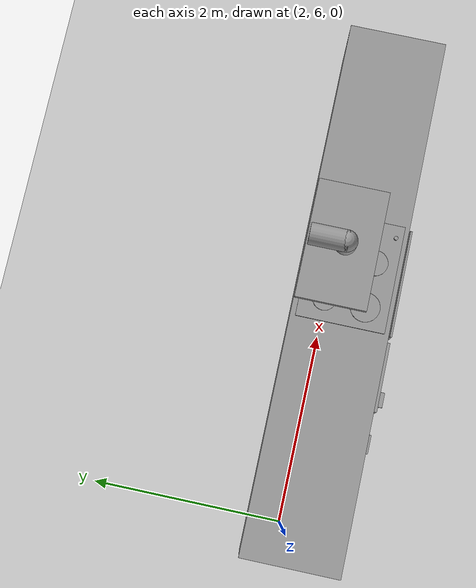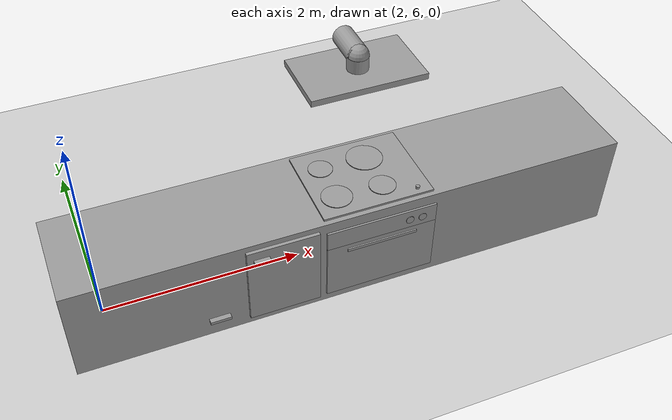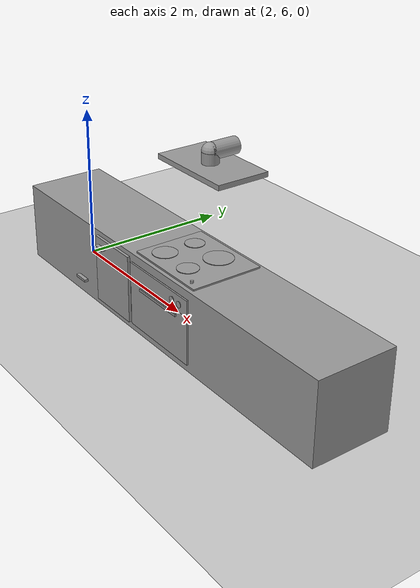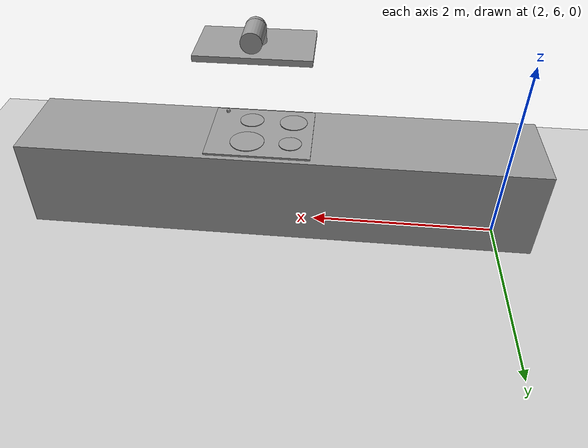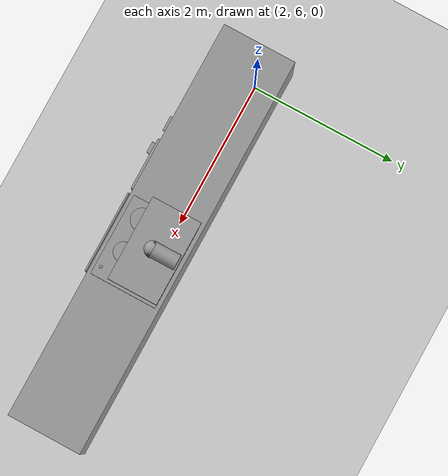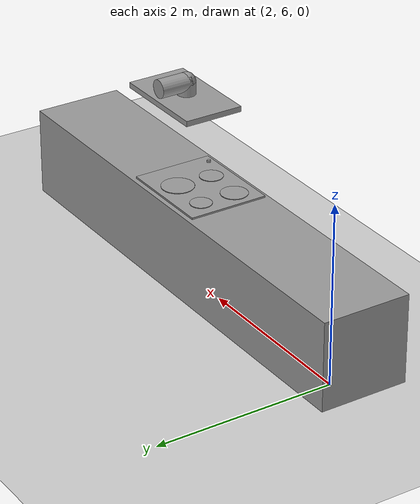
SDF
<sdf version="1.7">
 <world name="default">
  <model name="ground_plane">
   <static>1</static>
   <link name="link">
    <collision name="collision">
     <geometry><plane><normal>0 0 1</normal><size>100 100</size></plane></geometry>
     <surface>
      <contact><collide_bitmask>65535</collide_bitmask></contact>
      <friction><ode><mu>100</mu><mu2>50</mu2></ode></friction>
     </surface>
    </collision>
    <visual name="visual">
     <cast_shadows>0</cast_shadows>
     <geometry><plane><normal>0 0 1</normal><size>100 100</size></plane></geometry>
     <material>
      <script><uri>file://media/materials/scripts/gazebo.material</uri><name>Gazebo/Grey</name></script>
     </material>
    </visual>
   </link>
  </model>
  <model name="my_kitchen">
   <link name="link">
    <inertial>
     <mass>1</mass>
     <inertia>
      <ixx>0.166667</ixx>
      <ixy>0</ixy>
      <ixz>0</ixz>
      <iyy>0.166667</iyy>
      <iyz>0</iyz>
      <izz>0.166667</izz>
     </inertia>
    </inertial>
    <pose>1.23923 -0.000128 0 0 -0 0</pose>
    <visual name="visual">
     <geometry><box><size>5.5 1 1</size></box></geometry>
     <material>
      <script><name>Gazebo/Grey</name><uri>file://media/materials/scripts/gazebo.material</uri></script>
      <shader type="pixel"><normal_map>__default__</normal_map></shader>
      <ambient>0.8 0.8 0.8 1</ambient>
      <diffuse>0.65 0.65 0.65 1</diffuse>
      <specular>0.01 0.01 0.01 1</specular>
      <emissive>0 0 0 1</emissive>
     </material>
     <pose>0 0 0.5 0 -0 0</pose>
    </visual>
    <collision name="collision">
     <pose>0 0 0.5 0 -0 0</pose>
     <geometry><box><size>5.5 1 1</size></box></geometry>
     <surface>
      <friction>
       <ode><mu>1</mu><mu2>1</mu2><fdir1>0 0 0</fdir1><slip1>0</slip1><slip2>0</slip2></ode>
       <torsional>
        <coefficient>1</coefficient>
        <patch_radius>0</patch_radius>
        <surface_radius>0</surface_radius>
        <use_patch_radius>1</use_patch_radius>
        <ode><slip>0</slip></ode>
       </torsional>
      </friction>
      <bounce><restitution_coefficient>0</restitution_coefficient><threshold>1e+06</threshold></bounce>
      <contact>
       <collide_without_contact>0</collide_without_contact>
       <collide_without_contact_bitmask>1</collide_without_contact_bitmask>
       <collide_bitmask>1</collide_bitmask>
       <ode>
        <soft_cfm>0</soft_cfm>
        <soft_erp>0.2</soft_erp>
        <kp>1e+13</kp>
        <kd>1</kd>
        <max_vel>0.01</max_vel>
        <min_depth>0</min_depth>
       </ode>
       <bullet>
        <split_impulse>1</split_impulse>
        <split_impulse_penetration_threshold>-0.01</split_impulse_penetration_threshold>
        <soft_cfm>0</soft_cfm>
        <soft_erp>0.2</soft_erp>
        <kp>1e+13</kp>
        <kd>1</kd>
       </bullet>
      </contact>
     </surface>
    </collision>
   </link>
   <link name="link_0_0">
    <inertial>
     <mass>1</mass>
     <inertia><ixx>0.145833</ixx><ixy>0</ixy><ixz>0</ixz><iyy>0.145833</iyy><iyz>0</iyz><izz>0.125</izz></inertia>
    </inertial>
    <pose>1.11587 -0.213264 1.02593 0 -0 0</pose>
    <gravity>0</gravity>
    <visual name="visual">
     <geometry><cylinder><radius>0.15</radius><length>0.01</length></cylinder></geometry>
     <material>
      <lighting>1</lighting>
      <script><uri>file://media/materials/scripts/gazebo.material</uri><name>Gazebo/Grey</name></script>
      <shader type="pixel"><normal_map>__default__</normal_map></shader>
      <ambient>0.3 0.3 0.3 1</ambient>
      <diffuse>0.3 0.3 0.3 1</diffuse>
      <specular>0.01 0.01 0.01 1</specular>
      <emissive>0 0 0 1</emissive>
     </material>
    </visual>
    <collision name="collision">
     <geometry><cylinder><radius>0.15</radius><length>0.01</length></cylinder></geometry>
     <surface>
      <friction>
       <ode><mu>1</mu><mu2>1</mu2><fdir1>0 0 0</fdir1><slip1>0</slip1><slip2>0</slip2></ode>
       <torsional>
        <coefficient>1</coefficient>
        <patch_radius>0</patch_radius>
        <surface_radius>0</surface_radius>
        <use_patch_radius>1</use_patch_radius>
        <ode><slip>0</slip></ode>
       </torsional>
      </friction>
      <bounce><restitution_coefficient>0</restitution_coefficient><threshold>1e+06</threshold></bounce>
      <contact>
       <collide_without_contact>0</collide_without_contact>
       <collide_without_contact_bitmask>1</collide_without_contact_bitmask>
       <collide_bitmask>1</collide_bitmask>
       <ode>
        <soft_cfm>0</soft_cfm>
        <soft_erp>0.2</soft_erp>
        <kp>1e+13</kp>
        <kd>1</kd>
        <max_vel>0.01</max_vel>
        <min_depth>0</min_depth>
       </ode>
       <bullet>
        <split_impulse>1</split_impulse>
        <split_impulse_penetration_threshold>-0.01</split_impulse_penetration_threshold>
        <soft_cfm>0</soft_cfm>
        <soft_erp>0.2</soft_erp>
        <kp>1e+13</kp>
        <kd>1</kd>
       </bullet>
      </contact>
     </surface>
    </collision>
   </link>
   <link name="link_0_0_clone">
    <inertial>
     <mass>1</mass>
     <inertia><ixx>0.145833</ixx><ixy>0</ixy><ixz>0</ixz><iyy>0.145833</iyy><iyz>0</iyz><izz>0.125</izz></inertia>
    </inertial>
    <pose>1.11788 0.197131 1.02593 0 -0 0</pose>
    <gravity>0</gravity>
    <visual name="visual">
     <geometry><cylinder><radius>0.12</radius><length>0.01</length></cylinder></geometry>
     <material>
      <lighting>1</lighting>
      <script><uri>file://media/materials/scripts/gazebo.material</uri><name>Gazebo/Grey</name></script>
      <shader type="pixel"><normal_map>__default__</normal_map></shader>
      <ambient>0.3 0.3 0.3 1</ambient>
      <diffuse>0.3 0.3 0.3 1</diffuse>
      <specular>0.01 0.01 0.01 1</specular>
      <emissive>0 0 0 1</emissive>
     </material>
    </visual>
    <collision name="collision">
     <geometry><cylinder><radius>0.12</radius><length>0.01</length></cylinder></geometry>
     <surface>
      <friction>
       <ode><mu>1</mu><mu2>1</mu2><fdir1>0 0 0</fdir1><slip1>0</slip1><slip2>0</slip2></ode>
       <torsional>
        <coefficient>1</coefficient>
        <patch_radius>0</patch_radius>
        <surface_radius>0</surface_radius>
        <use_patch_radius>1</use_patch_radius>
        <ode><slip>0</slip></ode>
       </torsional>
      </friction>
      <bounce><restitution_coefficient>0</restitution_coefficient><threshold>1e+06</threshold></bounce>
      <contact>
       <collide_without_contact>0</collide_without_contact>
       <collide_without_contact_bitmask>1</collide_without_contact_bitmask>
       <collide_bitmask>1</collide_bitmask>
       <ode>
        <soft_cfm>0</soft_cfm>
        <soft_erp>0.2</soft_erp>
        <kp>1e+13</kp>
        <kd>1</kd>
        <max_vel>0.01</max_vel>
        <min_depth>0</min_depth>
       </ode>
       <bullet>
        <split_impulse>1</split_impulse>
        <split_impulse_penetration_threshold>-0.01</split_impulse_penetration_threshold>
        <soft_cfm>0</soft_cfm>
        <soft_erp>0.2</soft_erp>
        <kp>1e+13</kp>
        <kd>1</kd>
       </bullet>
      </contact>
     </surface>
    </collision>
   </link>
   <link name="link_0_0_clone_clone">
    <inertial>
     <mass>1</mass>
     <inertia><ixx>0.145833</ixx><ixy>0</ixy><ixz>0</ixz><iyy>0.145833</iyy><iyz>0</iyz><izz>0.125</izz></inertia>
    </inertial>
    <pose>1.57169 0.194413 1.02593 0 -0 0</pose>
    <gravity>0</gravity>
    <visual name="visual">
     <geometry><cylinder><radius>0.18</radius><length>0.01</length></cylinder></geometry>
     <material>
      <lighting>1</lighting>
      <script><uri>file://media/materials/scripts/gazebo.material</uri><name>Gazebo/Grey</name></script>
      <shader type="pixel"><normal_map>__default__</normal_map></shader>
      <ambient>0.3 0.3 0.3 1</ambient>
      <diffuse>0.3 0.3 0.3 1</diffuse>
      <specular>0.01 0.01 0.01 1</specular>
      <emissive>0 0 0 1</emissive>
     </material>
    </visual>
    <collision name="collision">
     <geometry><cylinder><radius>0.18</radius><length>0.01</length></cylinder></geometry>
     <surface>
      <friction>
       <ode><mu>1</mu><mu2>1</mu2><fdir1>0 0 0</fdir1><slip1>0</slip1><slip2>0</slip2></ode>
       <torsional>
        <coefficient>1</coefficient>
        <patch_radius>0</patch_radius>
        <surface_radius>0</surface_radius>
        <use_patch_radius>1</use_patch_radius>
        <ode><slip>0</slip></ode>
       </torsional>
      </friction>
      <bounce><restitution_coefficient>0</restitution_coefficient><threshold>1e+06</threshold></bounce>
      <contact>
       <collide_without_contact>0</collide_without_contact>
       <collide_without_contact_bitmask>1</collide_without_contact_bitmask>
       <collide_bitmask>1</collide_bitmask>
       <ode>
        <soft_cfm>0</soft_cfm>
        <soft_erp>0.2</soft_erp>
        <kp>1e+13</kp>
        <kd>1</kd>
        <max_vel>0.01</max_vel>
        <min_depth>0</min_depth>
       </ode>
       <bullet>
        <split_impulse>1</split_impulse>
        <split_impulse_penetration_threshold>-0.01</split_impulse_penetration_threshold>
        <soft_cfm>0</soft_cfm>
        <soft_erp>0.2</soft_erp>
        <kp>1e+13</kp>
        <kd>1</kd>
       </bullet>
      </contact>
     </surface>
    </collision>
   </link>
   <link name="link_0_0_clone_clone_clone">
    <inertial>
     <mass>1</mass>
     <inertia><ixx>0.145833</ixx><ixy>0</ixy><ixz>0</ixz><iyy>0.145833</iyy><iyz>0</iyz><izz>0.125</izz></inertia>
    </inertial>
    <pose>1.57274 -0.22407 1.02593 0 -0 0</pose>
    <gravity>0</gravity>
    <visual name="visual">
     <geometry><cylinder><radius>0.13</radius><length>0.01</length></cylinder></geometry>
     <material>
      <lighting>1</lighting>
      <script><uri>file://media/materials/scripts/gazebo.material</uri><name>Gazebo/Grey</name></script>
      <shader type="pixel"><normal_map>__default__</normal_map></shader>
      <ambient>0.3 0.3 0.3 1</ambient>
      <diffuse>0.3 0.3 0.3 1</diffuse>
      <specular>0.01 0.01 0.01 1</specular>
      <emissive>0 0 0 1</emissive>
     </material>
    </visual>
    <collision name="collision">
     <geometry><cylinder><radius>0.13</radius><length>0.01</length></cylinder></geometry>
     <surface>
      <friction>
       <ode><mu>1</mu><mu2>1</mu2><fdir1>0 0 0</fdir1><slip1>0</slip1><slip2>0</slip2></ode>
       <torsional>
        <coefficient>1</coefficient>
        <patch_radius>0</patch_radius>
        <surface_radius>0</surface_radius>
        <use_patch_radius>1</use_patch_radius>
        <ode><slip>0</slip></ode>
       </torsional>
      </friction>
      <bounce><restitution_coefficient>0</restitution_coefficient><threshold>1e+06</threshold></bounce>
      <contact>
       <collide_without_contact>0</collide_without_contact>
       <collide_without_contact_bitmask>1</collide_without_contact_bitmask>
       <collide_bitmask>1</collide_bitmask>
       <ode>
        <soft_cfm>0</soft_cfm>
        <soft_erp>0.2</soft_erp>
        <kp>1e+13</kp>
        <kd>1</kd>
        <max_vel>0.01</max_vel>
        <min_depth>0</min_depth>
       </ode>
       <bullet>
        <split_impulse>1</split_impulse>
        <split_impulse_penetration_threshold>-0.01</split_impulse_penetration_threshold>
        <soft_cfm>0</soft_cfm>
        <soft_erp>0.2</soft_erp>
        <kp>1e+13</kp>
        <kd>1</kd>
       </bullet>
      </contact>
     </surface>
    </collision>
   </link>
   <link name="link_0_0_clone_clone_clone_clone_clone_clone">
    <inertial>
     <mass>1</mass>
     <inertia><ixx>0.145833</ixx><ixy>0</ixy><ixz>0</ixz><iyy>0.145833</iyy><iyz>0</iyz><izz>0.125</izz></inertia>
    </inertial>
    <pose>1.86215 -0.379023 1.03286 0 -0 0</pose>
    <visual name="visual">
     <geometry><cylinder><radius>0.02</radius><length>0.03</length></cylinder></geometry>
     <material>
      <lighting>1</lighting>
      <script><uri>file://media/materials/scripts/gazebo.material</uri><name>Gazebo/Grey</name></script>
      <shader type="pixel"><normal_map>__default__</normal_map></shader>
      <ambient>0.6 0.6 0.6 1</ambient>
      <diffuse>0.6 0.6 0.6 1</diffuse>
      <specular>0.01 0.01 0.01 1</specular>
      <emissive>0 0 0 1</emissive>
     </material>
    </visual>
    <collision name="collision">
     <geometry><cylinder><radius>0.02</radius><length>0.03</length></cylinder></geometry>
     <surface>
      <friction>
       <ode><mu>1</mu><mu2>1</mu2><fdir1>0 0 0</fdir1><slip1>0</slip1><slip2>0</slip2></ode>
       <torsional>
        <coefficient>1</coefficient>
        <patch_radius>0</patch_radius>
        <surface_radius>0</surface_radius>
        <use_patch_radius>1</use_patch_radius>
        <ode><slip>0</slip></ode>
       </torsional>
      </friction>
      <bounce><restitution_coefficient>0</restitution_coefficient><threshold>1e+06</threshold></bounce>
      <contact>
       <collide_without_contact>0</collide_without_contact>
       <collide_without_contact_bitmask>1</collide_without_contact_bitmask>
       <collide_bitmask>1</collide_bitmask>
       <ode>
        <soft_cfm>0</soft_cfm>
        <soft_erp>0.2</soft_erp>
        <kp>1e+13</kp>
        <kd>1</kd>
        <max_vel>0.01</max_vel>
        <min_depth>0</min_depth>
       </ode>
       <bullet>
        <split_impulse>1</split_impulse>
        <split_impulse_penetration_threshold>-0.01</split_impulse_penetration_threshold>
        <soft_cfm>0</soft_cfm>
        <soft_erp>0.2</soft_erp>
        <kp>1e+13</kp>
        <kd>1</kd>
       </bullet>
      </contact>
     </surface>
    </collision>
   </link>
   <link name="link_0_clone_1">
    <inertial>
     <mass>1</mass>
     <inertia><ixx>0.145833</ixx><ixy>0</ixy><ixz>0</ixz><iyy>0.145833</iyy><iyz>0</iyz><izz>0.125</izz></inertia>
    </inertial>
    <pose>1.8493 -0.544143 0.806367 0 -0 0</pose>
    <visual name="visual">
     <pose>0 0 0 1.57013 1.5707 -0.000572</pose>
     <geometry><cylinder><radius>0.04</radius><length>0.01</length></cylinder></geometry>
     <material>
      <lighting>1</lighting>
      <script><uri>file://media/materials/scripts/gazebo.material</uri><name>Gazebo/Grey</name></script>
      <shader type="pixel"><normal_map>__default__</normal_map></shader>
      <ambient>0.9 0.9 0.9 1</ambient>
      <diffuse>0.9 0.9 0.9 1</diffuse>
      <specular>0.01 0.01 0.01 1</specular>
      <emissive>0 0 0 1</emissive>
     </material>
    </visual>
    <collision name="collision">
     <pose>0 0 0 1.5707 1.5707 -0</pose>
     <geometry><cylinder><radius>0.04</radius><length>0.01</length></cylinder></geometry>
     <surface>
      <friction>
       <ode><mu>1</mu><mu2>1</mu2><fdir1>0 0 0</fdir1><slip1>0</slip1><slip2>0</slip2></ode>
       <torsional>
        <coefficient>1</coefficient>
        <patch_radius>0</patch_radius>
        <surface_radius>0</surface_radius>
        <use_patch_radius>1</use_patch_radius>
        <ode><slip>0</slip></ode>
       </torsional>
      </friction>
      <bounce><restitution_coefficient>0</restitution_coefficient><threshold>1e+06</threshold></bounce>
      <contact>
       <collide_without_contact>0</collide_without_contact>
       <collide_without_contact_bitmask>1</collide_without_contact_bitmask>
       <collide_bitmask>1</collide_bitmask>
       <ode>
        <soft_cfm>0</soft_cfm>
        <soft_erp>0.2</soft_erp>
        <kp>1e+13</kp>
        <kd>1</kd>
        <max_vel>0.01</max_vel>
        <min_depth>0</min_depth>
       </ode>
       <bullet>
        <split_impulse>1</split_impulse>
        <split_impulse_penetration_threshold>-0.01</split_impulse_penetration_threshold>
        <soft_cfm>0</soft_cfm>
        <soft_erp>0.2</soft_erp>
        <kp>1e+13</kp>
        <kd>1</kd>
       </bullet>
      </contact>
     </surface>
    </collision>
   </link>
   <link name="link_0_clone_1_clone">
    <inertial>
     <mass>1</mass>
     <inertia><ixx>0.145833</ixx><ixy>0</ixy><ixz>0</ixz><iyy>0.145833</iyy><iyz>0</iyz><izz>0.125</izz></inertia>
    </inertial>
    <pose>1.72105 -0.544038 0.809821 0 -0 0</pose>
    <visual name="visual">
     <pose>0 0 0 1.57013 1.5707 -0.000572</pose>
     <geometry><cylinder><radius>0.04</radius><length>0.01</length></cylinder></geometry>
     <material>
      <lighting>1</lighting>
      <script><uri>file://media/materials/scripts/gazebo.material</uri><name>Gazebo/Grey</name></script>
      <shader type="pixel"><normal_map>__default__</normal_map></shader>
      <ambient>0.9 0.9 0.9 1</ambient>
      <diffuse>0.9 0.9 0.9 1</diffuse>
      <specular>0.01 0.01 0.01 1</specular>
      <emissive>0 0 0 1</emissive>
     </material>
    </visual>
    <collision name="collision">
     <pose>0 0 0 1.57013 1.5707 -0.000572</pose>
     <geometry><cylinder><radius>0.04</radius><length>0.01</length></cylinder></geometry>
     <surface>
      <friction>
       <ode><mu>1</mu><mu2>1</mu2><fdir1>0 0 0</fdir1><slip1>0</slip1><slip2>0</slip2></ode>
       <torsional>
        <coefficient>1</coefficient>
        <patch_radius>0</patch_radius>
        <surface_radius>0</surface_radius>
        <use_patch_radius>1</use_patch_radius>
        <ode><slip>0</slip></ode>
       </torsional>
      </friction>
      <bounce><restitution_coefficient>0</restitution_coefficient><threshold>1e+06</threshold></bounce>
      <contact>
       <collide_without_contact>0</collide_without_contact>
       <collide_without_contact_bitmask>1</collide_without_contact_bitmask>
       <collide_bitmask>1</collide_bitmask>
       <ode>
        <soft_cfm>0</soft_cfm>
        <soft_erp>0.2</soft_erp>
        <kp>1e+13</kp>
        <kd>1</kd>
        <max_vel>0.01</max_vel>
        <min_depth>0</min_depth>
       </ode>
       <bullet>
        <split_impulse>1</split_impulse>
        <split_impulse_penetration_threshold>-0.01</split_impulse_penetration_threshold>
        <soft_cfm>0</soft_cfm>
        <soft_erp>0.2</soft_erp>
        <kp>1e+13</kp>
        <kd>1</kd>
       </bullet>
      </contact>
     </surface>
    </collision>
   </link>
   <link name="link_clone_0">
    <inertial>
     <mass>1</mass>
     <inertia>
      <ixx>0.166667</ixx>
      <ixy>0</ixy>
      <ixz>0</ixz>
      <iyy>0.166667</iyy>
      <iyz>0</iyz>
      <izz>0.166667</izz>
     </inertia>
    </inertial>
    <pose>1.44437 -0.002505 0.513121 0 -0 0</pose>
    <gravity>0</gravity>
    <visual name="visual">
     <geometry><box><size>1.1 0.9 0.02</size></box></geometry>
     <material>
      <script><name>Gazebo/Grey</name><uri>file://media/materials/scripts/gazebo.material</uri></script>
      <shader type="pixel"><normal_map>__default__</normal_map></shader>
      <ambient>0.2 0.2 0.2 1</ambient>
      <diffuse>0.2 0.2 0.2 1</diffuse>
      <specular>0.01 0.01 0.01 1</specular>
      <emissive>0 0 0 1</emissive>
     </material>
     <pose>0 0 0.5 0 -0 0</pose>
    </visual>
    <collision name="collision">
     <pose>0 0 0.5 0 -0 0</pose>
     <geometry><box><size>1.1 0.9 0.02</size></box></geometry>
     <surface>
      <friction>
       <ode><mu>1</mu><mu2>1</mu2><fdir1>0 0 0</fdir1><slip1>0</slip1><slip2>0</slip2></ode>
       <torsional>
        <coefficient>1</coefficient>
        <patch_radius>0</patch_radius>
        <surface_radius>0</surface_radius>
        <use_patch_radius>1</use_patch_radius>
        <ode><slip>0</slip></ode>
       </torsional>
      </friction>
      <bounce><restitution_coefficient>0</restitution_coefficient><threshold>1e+06</threshold></bounce>
      <contact>
       <collide_without_contact>0</collide_without_contact>
       <collide_without_contact_bitmask>1</collide_without_contact_bitmask>
       <collide_bitmask>1</collide_bitmask>
       <ode>
        <soft_cfm>0</soft_cfm>
        <soft_erp>0.2</soft_erp>
        <kp>1e+13</kp>
        <kd>1</kd>
        <max_vel>0.01</max_vel>
        <min_depth>0</min_depth>
       </ode>
       <bullet>
        <split_impulse>1</split_impulse>
        <split_impulse_penetration_threshold>-0.01</split_impulse_penetration_threshold>
        <soft_cfm>0</soft_cfm>
        <soft_erp>0.2</soft_erp>
        <kp>1e+13</kp>
        <kd>1</kd>
       </bullet>
      </contact>
     </surface>
    </collision>
   </link>
   <link name="link_clone_0_clone_0">
    <inertial>
     <mass>1</mass>
     <inertia>
      <ixx>0.166667</ixx>
      <ixy>0</ixy>
      <ixz>0</ixz>
      <iyy>0.166667</iyy>
      <iyz>0</iyz>
      <izz>0.166667</izz>
     </inertia>
    </inertial>
    <pose>1.44476 -0.529129 0.013848 0 -0 0</pose>
    <visual name="visual">
     <geometry><box><size>1.1 0.8 0.02</size></box></geometry>
     <material>
      <script><name>Gazebo/Grey</name><uri>file://media/materials/scripts/gazebo.material</uri></script>
      <shader type="pixel"><normal_map>__default__</normal_map></shader>
      <ambient>0.2 0.2 0.2 1</ambient>
      <diffuse>0.2 0.2 0.2 1</diffuse>
      <specular>0.01 0.01 0.01 1</specular>
      <emissive>0 0 0 1</emissive>
     </material>
     <pose>0 0 0.5 1.5707 -0 0</pose>
    </visual>
    <collision name="collision">
     <pose>0 0 0.5 1.5707 -0 0</pose>
     <geometry><box><size>1.1 0.8 0.02</size></box></geometry>
     <surface>
      <friction>
       <ode><mu>1</mu><mu2>1</mu2><fdir1>0 0 0</fdir1><slip1>0</slip1><slip2>0</slip2></ode>
       <torsional>
        <coefficient>1</coefficient>
        <patch_radius>0</patch_radius>
        <surface_radius>0</surface_radius>
        <use_patch_radius>1</use_patch_radius>
        <ode><slip>0</slip></ode>
       </torsional>
      </friction>
      <bounce><restitution_coefficient>0</restitution_coefficient><threshold>1e+06</threshold></bounce>
      <contact>
       <collide_without_contact>0</collide_without_contact>
       <collide_without_contact_bitmask>1</collide_without_contact_bitmask>
       <collide_bitmask>1</collide_bitmask>
       <ode>
        <soft_cfm>0</soft_cfm>
        <soft_erp>0.2</soft_erp>
        <kp>1e+13</kp>
        <kd>1</kd>
        <max_vel>0.01</max_vel>
        <min_depth>0</min_depth>
       </ode>
       <bullet>
        <split_impulse>1</split_impulse>
        <split_impulse_penetration_threshold>-0.01</split_impulse_penetration_threshold>
        <soft_cfm>0</soft_cfm>
        <soft_erp>0.2</soft_erp>
        <kp>1e+13</kp>
        <kd>1</kd>
       </bullet>
      </contact>
     </surface>
    </collision>
   </link>
   <link name="link_clone_0_clone_0_clone">
    <inertial>
     <mass>1</mass>
     <inertia>
      <ixx>0.166667</ixx>
      <ixy>0</ixy>
      <ixz>0</ixz>
      <iyy>0.166667</iyy>
      <iyz>0</iyz>
      <izz>0.166667</izz>
     </inertia>
    </inertial>
    <pose>1.44317 -0.53222 0.313912 0 -0 0</pose>
    <visual name="visual">
     <geometry><box><size>1.1 0.2 0.02</size></box></geometry>
     <material>
      <script><name>Gazebo/Grey</name><uri>file://media/materials/scripts/gazebo.material</uri></script>
      <shader type="pixel"><normal_map>__default__</normal_map></shader>
      <ambient>0.4 0.4 0.4 1</ambient>
      <diffuse>0.4 0.4 0.4 1</diffuse>
      <specular>0.01 0.01 0.01 1</specular>
      <emissive>0 0 0 1</emissive>
     </material>
     <pose>0 0 0.5 1.5707 -0 0</pose>
    </visual>
    <collision name="collision">
     <pose>0 0 0.5 1.5707 -0 0</pose>
     <geometry><box><size>1.1 0.2 0.02</size></box></geometry>
     <surface>
      <friction>
       <ode><mu>1</mu><mu2>1</mu2><fdir1>0 0 0</fdir1><slip1>0</slip1><slip2>0</slip2></ode>
       <torsional>
        <coefficient>1</coefficient>
        <patch_radius>0</patch_radius>
        <surface_radius>0</surface_radius>
        <use_patch_radius>1</use_patch_radius>
        <ode><slip>0</slip></ode>
       </torsional>
      </friction>
      <bounce><restitution_coefficient>0</restitution_coefficient><threshold>1e+06</threshold></bounce>
      <contact>
       <collide_without_contact>0</collide_without_contact>
       <collide_without_contact_bitmask>1</collide_without_contact_bitmask>
       <collide_bitmask>1</collide_bitmask>
       <ode>
        <soft_cfm>0</soft_cfm>
        <soft_erp>0.2</soft_erp>
        <kp>1e+13</kp>
        <kd>1</kd>
        <max_vel>0.01</max_vel>
        <min_depth>0</min_depth>
       </ode>
       <bullet>
        <split_impulse>1</split_impulse>
        <split_impulse_penetration_threshold>-0.01</split_impulse_penetration_threshold>
        <soft_cfm>0</soft_cfm>
        <soft_erp>0.2</soft_erp>
        <kp>1e+13</kp>
        <kd>1</kd>
       </bullet>
      </contact>
     </surface>
    </collision>
   </link>
   <link name="link_clone_0_clone_0_clone_clone">
    <inertial>
     <mass>1</mass>
     <inertia>
      <ixx>0.166667</ixx>
      <ixy>0</ixy>
      <ixz>0</ixz>
      <iyy>0.166667</iyy>
      <iyz>0</iyz>
      <izz>0.166667</izz>
     </inertia>
    </inertial>
    <pose>1.44437 -0.543751 0.146791 0 -0 0</pose>
    <gravity>0</gravity>
    <visual name="visual">
     <geometry><box><size>0.7 0.03 0.02</size></box></geometry>
     <material>
      <script><name>Gazebo/Grey</name><uri>file://media/materials/scripts/gazebo.material</uri></script>
      <shader type="pixel"><normal_map>__default__</normal_map></shader>
      <ambient>0.9 0.9 0.9 1</ambient>
      <diffuse>0.9 0.9 0.9 1</diffuse>
      <specular>0.01 0.01 0.01 1</specular>
      <emissive>0 0 0 1</emissive>
     </material>
     <pose>0 0 0.5 1.5707 -0 0</pose>
    </visual>
    <collision name="collision">
     <pose>0 0 0.5 1.5707 -0 0</pose>
     <geometry><box><size>0.7 0.03 0.02</size></box></geometry>
     <surface>
      <friction>
       <ode><mu>1</mu><mu2>1</mu2><fdir1>0 0 0</fdir1><slip1>0</slip1><slip2>0</slip2></ode>
       <torsional>
        <coefficient>1</coefficient>
        <patch_radius>0</patch_radius>
        <surface_radius>0</surface_radius>
        <use_patch_radius>1</use_patch_radius>
        <ode><slip>0</slip></ode>
       </torsional>
      </friction>
      <bounce><restitution_coefficient>0</restitution_coefficient><threshold>1e+06</threshold></bounce>
      <contact>
       <collide_without_contact>0</collide_without_contact>
       <collide_without_contact_bitmask>1</collide_without_contact_bitmask>
       <collide_bitmask>1</collide_bitmask>
       <ode>
        <soft_cfm>0</soft_cfm>
        <soft_erp>0.2</soft_erp>
        <kp>1e+13</kp>
        <kd>1</kd>
        <max_vel>0.01</max_vel>
        <min_depth>0</min_depth>
       </ode>
       <bullet>
        <split_impulse>1</split_impulse>
        <split_impulse_penetration_threshold>-0.01</split_impulse_penetration_threshold>
        <soft_cfm>0</soft_cfm>
        <soft_erp>0.2</soft_erp>
        <kp>1e+13</kp>
        <kd>1</kd>
       </bullet>
      </contact>
     </surface>
    </collision>
   </link>
   <link name="link_clone_clone_clone_0_clone_clone_clone_0_clone_clone_clone_clone">
    <inertial>
     <mass>1</mass>
     <inertia>
      <ixx>0.166667</ixx>
      <ixy>0</ixy>
      <ixz>0</ixz>
      <iyy>0.166667</iyy>
      <iyz>0</iyz>
      <izz>0.166667</izz>
     </inertia>
    </inertial>
    <pose>0.477669 -0.509689 0.016041 0 -0 0</pose>
    <gravity>0</gravity>
    <visual name="visual">
     <geometry><box><size>0.05 0.7 0.85</size></box></geometry>
     <material>
      <script><name>Gazebo/Grey</name><uri>file://media/materials/scripts/gazebo.material</uri></script>
      <shader type="pixel"><normal_map>__default__</normal_map></shader>
      <ambient>0.4 0.4 0.4 1</ambient>
      <diffuse>0.4 0.4 0.4 1</diffuse>
      <specular>0.01 0.01 0.01 1</specular>
      <emissive>0 0 0 1</emissive>
     </material>
     <pose>0 0 0.5 0 -0 1.5707</pose>
    </visual>
    <collision name="collision">
     <pose>0 0 0.5 0 -0 1.5707</pose>
     <geometry><box><size>0.05 0.7 0.85</size></box></geometry>
     <surface>
      <friction>
       <ode><mu>1</mu><mu2>1</mu2><fdir1>0 0 0</fdir1><slip1>0</slip1><slip2>0</slip2></ode>
       <torsional>
        <coefficient>1</coefficient>
        <patch_radius>0</patch_radius>
        <surface_radius>0</surface_radius>
        <use_patch_radius>1</use_patch_radius>
        <ode><slip>0</slip></ode>
       </torsional>
      </friction>
      <bounce><restitution_coefficient>0</restitution_coefficient><threshold>1e+06</threshold></bounce>
      <contact>
       <collide_without_contact>0</collide_without_contact>
       <collide_without_contact_bitmask>1</collide_without_contact_bitmask>
       <collide_bitmask>1</collide_bitmask>
       <ode>
        <soft_cfm>0</soft_cfm>
        <soft_erp>0.2</soft_erp>
        <kp>1e+13</kp>
        <kd>1</kd>
        <max_vel>0.01</max_vel>
        <min_depth>0</min_depth>
       </ode>
       <bullet>
        <split_impulse>1</split_impulse>
        <split_impulse_penetration_threshold>-0.01</split_impulse_penetration_threshold>
        <soft_cfm>0</soft_cfm>
        <soft_erp>0.2</soft_erp>
        <kp>1e+13</kp>
        <kd>1</kd>
       </bullet>
      </contact>
     </surface>
    </collision>
   </link>
   <link name="link_clone_clone_clone_0_clone_clone_clone_clone_1_clone_0">
    <inertial>
     <mass>1</mass>
     <inertia>
      <ixx>0.166667</ixx>
      <ixy>0</ixy>
      <ixz>0</ixz>
      <iyy>0.166667</iyy>
      <iyz>0</iyz>
      <izz>0.166667</izz>
     </inertia>
    </inertial>
    <pose>0.264715 -0.561956 0.338029 0 -0 0</pose>
    <gravity>0</gravity>
    <visual name="visual">
     <geometry><box><size>0.05 0.15 0.03</size></box></geometry>
     <material>
      <script><name>Gazebo/Grey</name><uri>file://media/materials/scripts/gazebo.material</uri></script>
      <shader type="pixel"><normal_map>__default__</normal_map></shader>
      <ambient>0.9 0.9 0.9 1</ambient>
      <diffuse>0.8 0.8 0.8 1</diffuse>
      <specular>0.01 0.01 0.01 1</specular>
      <emissive>0 0 0 1</emissive>
     </material>
     <pose>0 0 0.5 0 -0 1.5707</pose>
    </visual>
    <collision name="collision">
     <pose>0 0 0.5 0 -0 1.5707</pose>
     <geometry><box><size>0.05 0.15 0.03</size></box></geometry>
     <surface>
      <friction>
       <ode><mu>1</mu><mu2>1</mu2><fdir1>0 0 0</fdir1><slip1>0</slip1><slip2>0</slip2></ode>
       <torsional>
        <coefficient>1</coefficient>
        <patch_radius>0</patch_radius>
        <surface_radius>0</surface_radius>
        <use_patch_radius>1</use_patch_radius>
        <ode><slip>0</slip></ode>
       </torsional>
      </friction>
      <bounce><restitution_coefficient>0</restitution_coefficient><threshold>1e+06</threshold></bounce>
      <contact>
       <collide_without_contact>0</collide_without_contact>
       <collide_without_contact_bitmask>1</collide_without_contact_bitmask>
       <collide_bitmask>1</collide_bitmask>
       <ode>
        <soft_cfm>0</soft_cfm>
        <soft_erp>0.2</soft_erp>
        <kp>1e+13</kp>
        <kd>1</kd>
        <max_vel>0.01</max_vel>
        <min_depth>0</min_depth>
       </ode>
       <bullet>
        <split_impulse>1</split_impulse>
        <split_impulse_penetration_threshold>-0.01</split_impulse_penetration_threshold>
        <soft_cfm>0</soft_cfm>
        <soft_erp>0.2</soft_erp>
        <kp>1e+13</kp>
        <kd>1</kd>
       </bullet>
      </contact>
     </surface>
    </collision>
   </link>
   <link name="link_clone_clone_clone_0_clone_clone_clone_clone_1_clone_0_clone_clone_clone">
    <inertial>
     <mass>1</mass>
     <inertia>
      <ixx>0.166667</ixx>
      <ixy>0</ixy>
      <ixz>0</ixz>
      <iyy>0.166667</iyy>
      <iyz>0</iyz>
      <izz>0.166667</izz>
     </inertia>
    </inertial>
    <pose>-0.169187 -0.575049 -0.243065 0 -0 0</pose>
    <gravity>0</gravity>
    <visual name="visual">
     <geometry><box><size>0.05 0.2 0.03</size></box></geometry>
     <material>
      <script><name>Gazebo/Grey</name><uri>file://media/materials/scripts/gazebo.material</uri></script>
      <shader type="pixel"><normal_map>__default__</normal_map></shader>
      <ambient>0.9 0.9 0.9 1</ambient>
      <diffuse>0.8 0.8 0.8 1</diffuse>
      <specular>0.01 0.01 0.01 1</specular>
      <emissive>0 0 0 1</emissive>
     </material>
     <pose>0 0 0.5 0 -0 1.5707</pose>
    </visual>
    <collision name="collision">
     <pose>0 0 0.5 0 -0 1.5707</pose>
     <geometry><box><size>0.05 0.2 0.03</size></box></geometry>
     <surface>
      <friction>
       <ode><mu>1</mu><mu2>1</mu2><fdir1>0 0 0</fdir1><slip1>0</slip1><slip2>0</slip2></ode>
       <torsional>
        <coefficient>1</coefficient>
        <patch_radius>0</patch_radius>
        <surface_radius>0</surface_radius>
        <use_patch_radius>1</use_patch_radius>
        <ode><slip>0</slip></ode>
       </torsional>
      </friction>
      <bounce><restitution_coefficient>0</restitution_coefficient><threshold>1e+06</threshold></bounce>
      <contact>
       <collide_without_contact>0</collide_without_contact>
       <collide_without_contact_bitmask>1</collide_without_contact_bitmask>
       <collide_bitmask>1</collide_bitmask>
       <ode>
        <soft_cfm>0</soft_cfm>
        <soft_erp>0.2</soft_erp>
        <kp>1e+13</kp>
        <kd>1</kd>
        <max_vel>0.01</max_vel>
        <min_depth>0</min_depth>
       </ode>
       <bullet>
        <split_impulse>1</split_impulse>
        <split_impulse_penetration_threshold>-0.01</split_impulse_penetration_threshold>
        <soft_cfm>0</soft_cfm>
        <soft_erp>0.2</soft_erp>
        <kp>1e+13</kp>
        <kd>1</kd>
       </bullet>
      </contact>
     </surface>
    </collision>
   </link>
   <static>1</static>
   <pose>3.14913 5.84953 0 0 -0 0</pose>
  </model>
  <model name="my_vacuum">
   <link name="link">
    <inertial>
     <mass>1</mass>
     <inertia>
      <ixx>0.166667</ixx>
      <ixy>0</ixy>
      <ixz>0</ixz>
      <iyy>0.166667</iyy>
      <iyz>0</iyz>
      <izz>0.166667</izz>
     </inertia>
    </inertial>
    <pose>0 -0.048228 0 0 -0 0</pose>
    <visual name="visual">
     <geometry><box><size>1.1 0.65 0.06</size></box></geometry>
     <material>
      <script><name>Gazebo/Grey</name><uri>file://media/materials/scripts/gazebo.material</uri></script>
      <shader type="pixel"><normal_map>__default__</normal_map></shader>
      <ambient>0.3 0.3 0.3 1</ambient>
      <diffuse>0.3 0.3 0.3 1</diffuse>
      <specular>0.01 0.01 0.01 1</specular>
      <emissive>0 0 0 1</emissive>
     </material>
     <pose>0 0 2.1 0 -0 0</pose>
    </visual>
    <collision name="collision">
     <pose>0 0 2.1 0 -0 0</pose>
     <geometry><box><size>1.1 0.65 0.06</size></box></geometry>
     <surface>
      <friction>
       <ode><mu>1</mu><mu2>1</mu2><fdir1>0 0 0</fdir1><slip1>0</slip1><slip2>0</slip2></ode>
       <torsional>
        <coefficient>1</coefficient>
        <patch_radius>0</patch_radius>
        <surface_radius>0</surface_radius>
        <use_patch_radius>1</use_patch_radius>
        <ode><slip>0</slip></ode>
       </torsional>
      </friction>
      <bounce><restitution_coefficient>0</restitution_coefficient><threshold>1e+06</threshold></bounce>
      <contact>
       <collide_without_contact>0</collide_without_contact>
       <collide_without_contact_bitmask>1</collide_without_contact_bitmask>
       <collide_bitmask>1</collide_bitmask>
       <ode>
        <soft_cfm>0</soft_cfm>
        <soft_erp>0.2</soft_erp>
        <kp>1e+13</kp>
        <kd>1</kd>
        <max_vel>0.01</max_vel>
        <min_depth>0</min_depth>
       </ode>
       <bullet>
        <split_impulse>1</split_impulse>
        <split_impulse_penetration_threshold>-0.01</split_impulse_penetration_threshold>
        <soft_cfm>0</soft_cfm>
        <soft_erp>0.2</soft_erp>
        <kp>1e+13</kp>
        <kd>1</kd>
       </bullet>
      </contact>
     </surface>
    </collision>
   </link>
   <link name="link_1">
    <inertial>
     <mass>1</mass>
     <inertia><ixx>0.145833</ixx><ixy>0</ixy><ixz>0</ixz><iyy>0.145833</iyy><iyz>0</iyz><izz>0.125</izz></inertia>
    </inertial>
    <pose>0.003402 -0.072362 2.63858 0 -0 0</pose>
    <visual name="visual">
     <pose>0 0 -0.45 0 -0 0</pose>
     <geometry><cylinder><radius>0.1</radius><length>0.15</length></cylinder></geometry>
     <material>
      <lighting>1</lighting>
      <script><uri>file://media/materials/scripts/gazebo.material</uri><name>Gazebo/Grey</name></script>
      <shader type="pixel"><normal_map>__default__</normal_map></shader>
      <ambient>0.3 0.3 0.3 1</ambient>
      <diffuse>0.3 0.3 0.3 1</diffuse>
      <specular>0.01 0.01 0.01 1</specular>
      <emissive>0 0 0 1</emissive>
     </material>
    </visual>
    <collision name="collision">
     <pose>0 0 -0.45 0 -0 0</pose>
     <geometry><cylinder><radius>0.1</radius><length>0.15</length></cylinder></geometry>
     <surface>
      <friction>
       <ode><mu>1</mu><mu2>1</mu2><fdir1>0 0 0</fdir1><slip1>0</slip1><slip2>0</slip2></ode>
       <torsional>
        <coefficient>1</coefficient>
        <patch_radius>0</patch_radius>
        <surface_radius>0</surface_radius>
        <use_patch_radius>1</use_patch_radius>
        <ode><slip>0</slip></ode>
       </torsional>
      </friction>
      <bounce><restitution_coefficient>0</restitution_coefficient><threshold>1e+06</threshold></bounce>
      <contact>
       <collide_without_contact>0</collide_without_contact>
       <collide_without_contact_bitmask>1</collide_without_contact_bitmask>
       <collide_bitmask>1</collide_bitmask>
       <ode>
        <soft_cfm>0</soft_cfm>
        <soft_erp>0.2</soft_erp>
        <kp>1e+13</kp>
        <kd>1</kd>
        <max_vel>0.01</max_vel>
        <min_depth>0</min_depth>
       </ode>
       <bullet>
        <split_impulse>1</split_impulse>
        <split_impulse_penetration_threshold>-0.01</split_impulse_penetration_threshold>
        <soft_cfm>0</soft_cfm>
        <soft_erp>0.2</soft_erp>
        <kp>1e+13</kp>
        <kd>1</kd>
       </bullet>
      </contact>
     </surface>
    </collision>
   </link>
   <link name="link_1_clone">
    <inertial>
     <mass>1</mass>
     <inertia><ixx>0.145833</ixx><ixy>0</ixy><ixz>0</ixz><iyy>0.145833</iyy><iyz>0</iyz><izz>0.125</izz></inertia>
    </inertial>
    <pose>0.004004 0.087852 2.71388 0 -0 0</pose>
    <visual name="visual">
     <pose>0 0 -0.45 1.5707 -0 0</pose>
     <geometry><cylinder><radius>0.1</radius><length>0.35</length></cylinder></geometry>
     <material>
      <lighting>1</lighting>
      <script><uri>file://media/materials/scripts/gazebo.material</uri><name>Gazebo/Grey</name></script>
      <shader type="pixel"><normal_map>__default__</normal_map></shader>
      <ambient>0.3 0.3 0.3 1</ambient>
      <diffuse>0.3 0.3 0.3 1</diffuse>
      <specular>0.01 0.01 0.01 1</specular>
      <emissive>0 0 0 1</emissive>
     </material>
    </visual>
    <collision name="collision">
     <pose>0 0 -0.45 1.5707 -0 0</pose>
     <geometry><cylinder><radius>0.1</radius><length>0.35</length></cylinder></geometry>
     <surface>
      <friction>
       <ode><mu>1</mu><mu2>1</mu2><fdir1>0 0 0</fdir1><slip1>0</slip1><slip2>0</slip2></ode>
       <torsional>
        <coefficient>1</coefficient>
        <patch_radius>0</patch_radius>
        <surface_radius>0</surface_radius>
        <use_patch_radius>1</use_patch_radius>
        <ode><slip>0</slip></ode>
       </torsional>
      </friction>
      <bounce><restitution_coefficient>0</restitution_coefficient><threshold>1e+06</threshold></bounce>
      <contact>
       <collide_without_contact>0</collide_without_contact>
       <collide_without_contact_bitmask>1</collide_without_contact_bitmask>
       <collide_bitmask>1</collide_bitmask>
       <ode>
        <soft_cfm>0</soft_cfm>
        <soft_erp>0.2</soft_erp>
        <kp>1e+13</kp>
        <kd>1</kd>
        <max_vel>0.01</max_vel>
        <min_depth>0</min_depth>
       </ode>
       <bullet>
        <split_impulse>1</split_impulse>
        <split_impulse_penetration_threshold>-0.01</split_impulse_penetration_threshold>
        <soft_cfm>0</soft_cfm>
        <soft_erp>0.2</soft_erp>
        <kp>1e+13</kp>
        <kd>1</kd>
       </bullet>
      </contact>
     </surface>
    </collision>
   </link>
   <link name="link_3">
    <inertial>
     <mass>1</mass>
     <inertia><ixx>0.1</ixx><ixy>0</ixy><ixz>0</ixz><iyy>0.1</iyy><iyz>0</iyz><izz>0.1</izz></inertia>
    </inertial>
    <pose>0.004236 -0.071859 2.71646 0 -0 0</pose>
    <visual name="visual">
     <pose>0 0 -0.45 0 -0 0</pose>
     <geometry><sphere><radius>0.1</radius></sphere></geometry>
     <material>
      <lighting>1</lighting>
      <script><uri>file://media/materials/scripts/gazebo.material</uri><name>Gazebo/Grey</name></script>
      <shader type="pixel"><normal_map>__default__</normal_map></shader>
      <ambient>0.3 0.3 0.3 1</ambient>
      <diffuse>0.3 0.3 0.3 1</diffuse>
      <specular>0.01 0.01 0.01 1</specular>
      <emissive>0 0 0 1</emissive>
     </material>
    </visual>
    <collision name="collision">
     <pose>0 0 -0.45 0 -0 0</pose>
     <geometry><sphere><radius>0.1</radius></sphere></geometry>
     <surface>
      <friction>
       <ode><mu>1</mu><mu2>1</mu2><fdir1>0 0 0</fdir1><slip1>0</slip1><slip2>0</slip2></ode>
       <torsional>
        <coefficient>1</coefficient>
        <patch_radius>0</patch_radius>
        <surface_radius>0</surface_radius>
        <use_patch_radius>1</use_patch_radius>
        <ode><slip>0</slip></ode>
       </torsional>
      </friction>
      <bounce><restitution_coefficient>0</restitution_coefficient><threshold>1e+06</threshold></bounce>
      <contact>
       <collide_without_contact>0</collide_without_contact>
       <collide_without_contact_bitmask>1</collide_without_contact_bitmask>
       <collide_bitmask>1</collide_bitmask>
       <ode>
        <soft_cfm>0</soft_cfm>
        <soft_erp>0.2</soft_erp>
        <kp>1e+13</kp>
        <kd>1</kd>
        <max_vel>0.01</max_vel>
        <min_depth>0</min_depth>
       </ode>
       <bullet>
        <split_impulse>1</split_impulse>
        <split_impulse_penetration_threshold>-0.01</split_impulse_penetration_threshold>
        <soft_cfm>0</soft_cfm>
        <soft_erp>0.2</soft_erp>
        <kp>1e+13</kp>
        <kd>1</kd>
       </bullet>
      </contact>
     </surface>
    </collision>
   </link>
   <static>1</static>
   <pose>4.59596 6.07784 0 0 -0 0</pose>
  </model>
 </world>
</sdf>
